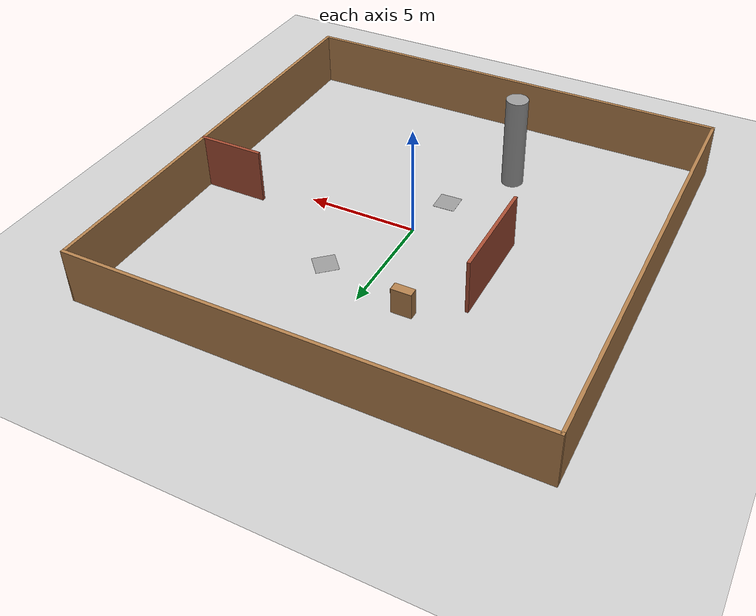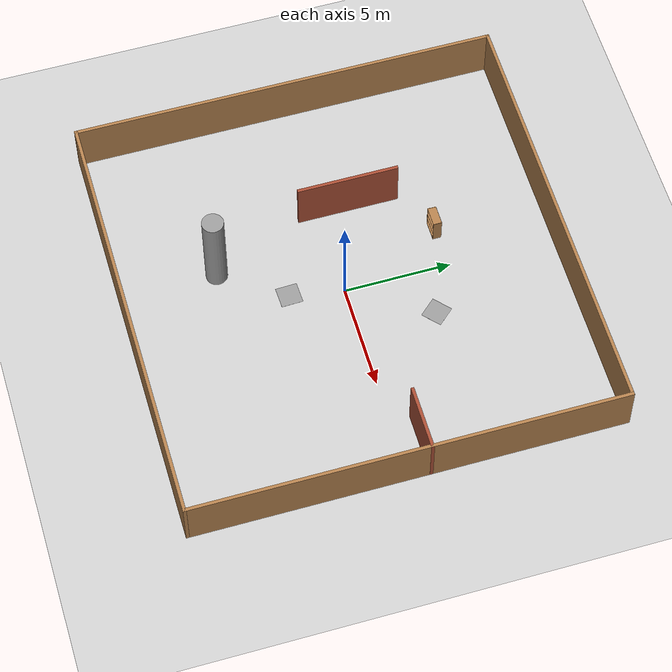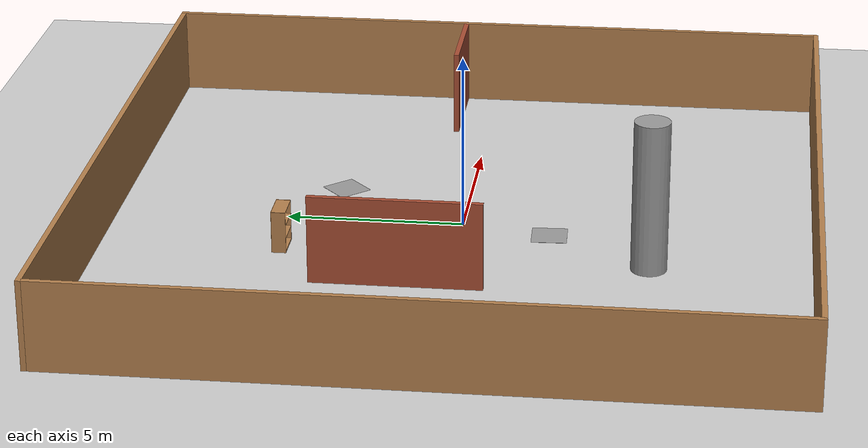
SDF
<sdf version="1.7">
 <world name="default">
  <light name="sun" type="directional">
   <pose>0 0 10 0 -0 0</pose>
   <diffuse>0.8 0.8 0.8 1</diffuse>
   <specular>0.2 0.2 0.2 1</specular>
   <attenuation>
    <range>1000</range>
    <constant>0.9</constant>
    <linear>0.01</linear>
    <quadratic>0.001</quadratic>
   </attenuation>
   <direction>-0.5 0.1 -0.9</direction>
   <spot><inner_angle>0</inner_angle><outer_angle>0</outer_angle><falloff>0</falloff></spot>
  </light>
  <model name="ground_plane">
   <static>1</static>
   <link name="link">
    <collision name="collision">
     <geometry><plane><normal>0 0 1</normal><size>100 100</size></plane></geometry>
     <surface>
      <contact><collide_bitmask>65535</collide_bitmask></contact>
      <friction><ode><mu>100</mu><mu2>50</mu2></ode></friction>
     </surface>
    </collision>
    <visual name="visual">
     <cast_shadows>0</cast_shadows>
     <geometry><plane><normal>0 0 1</normal><size>100 100</size></plane></geometry>
     <material>
      <script><uri>file://media/materials/scripts/gazebo.material</uri><name>Gazebo/Grey</name></script>
     </material>
    </visual>
   </link>
  </model>
  <gravity>0 0 -9.8</gravity>
  <magnetic_field>6e-06 2.3e-05 -4.2e-05</magnetic_field>
  <atmosphere type="adiabatic"/>
  <physics type="ode">
   <max_step_size>0.001</max_step_size>
   <real_time_factor>1</real_time_factor>
   <real_time_update_rate>1000</real_time_update_rate>
  </physics>
  <scene><ambient>0.4 0.4 0.4 1</ambient><background>0.7 0.7 0.7 1</background><shadows>1</shadows></scene>
  <audio><device>default</device></audio>
  <spherical_coordinates>
   <surface_model>EARTH_WGS84</surface_model>
   <latitude_deg>0</latitude_deg>
   <longitude_deg>0</longitude_deg>
   <elevation>0</elevation>
   <heading_deg>0</heading_deg>
  </spherical_coordinates>
  <model name="unit_box">
   <pose>2.21978 3.65422 0.002059 0 -0 0.734078</pose>
   <link name="link">
    <inertial>
     <mass>1</mass>
     <inertia>
      <ixx>0.166667</ixx>
      <ixy>0</ixy>
      <ixz>0</ixz>
      <iyy>0.166667</iyy>
      <iyz>0</iyz>
      <izz>0.166667</izz>
     </inertia>
    </inertial>
    <collision name="collision"><geometry><box><size>1 1 0.00411872</size></box></geometry></collision>
    <visual name="visual">
     <geometry><box><size>1 1 0.00411872</size></box></geometry>
     <material>
      <script><name>Gazebo/Grey</name><uri>file://media/materials/scripts/gazebo.material</uri></script>
     </material>
    </visual>
   </link>
  </model>
  <model name="unit_box_0">
   <pose>-0.485553 -2.48079 0.003389 0 -0 0.036338</pose>
   <link name="link">
    <inertial>
     <mass>1</mass>
     <inertia>
      <ixx>0.166667</ixx>
      <ixy>0</ixy>
      <ixz>0</ixz>
      <iyy>0.166667</iyy>
      <iyz>0</iyz>
      <izz>0.166667</izz>
     </inertia>
    </inertial>
    <collision name="collision"><geometry><box><size>1 1 0.00677866</size></box></geometry></collision>
    <visual name="visual">
     <geometry><box><size>1 1 0.00677866</size></box></geometry>
     <material>
      <script><name>Gazebo/Grey</name><uri>file://media/materials/scripts/gazebo.material</uri></script>
     </material>
    </visual>
   </link>
  </model>
  <model name="aWall">
   <pose>-2.1425 1.37 0 0 -0 0</pose>
   <link name="Wall_6">
    <collision name="Wall_6_Collision">
     <geometry><box><size>4.75 0.15 2.5</size></box></geometry>
     <pose>0 0 1.25 0 -0 0</pose>
    </collision>
    <visual name="Wall_6_Visual">
     <pose>0 0 1.25 0 -0 0</pose>
     <geometry><box><size>4.75 0.15 2.5</size></box></geometry>
     <material>
      <script><uri>file://media/materials/scripts/gazebo.material</uri><name>Gazebo/Bricks</name></script>
      <ambient>1 1 1 1</ambient>
     </material>
     <meta><layer>0</layer></meta>
    </visual>
    <pose>-2.0675 -0 0 0 -0 -1.5708</pose>
   </link>
   <static>1</static>
  </model>
  <model name="playPen">
   <pose>-0.138707 0.05021 0 0 -0 0</pose>
   <link name="Wall_13">
    <collision name="Wall_13_Collision">
     <geometry><box><size>20.25 0.15 2.5</size></box></geometry>
     <pose>0 0 1.25 0 -0 0</pose>
    </collision>
    <visual name="Wall_13_Visual">
     <pose>0 0 1.25 0 -0 0</pose>
     <geometry><box><size>20.25 0.15 2.5</size></box></geometry>
     <material>
      <script><uri>file://media/materials/scripts/gazebo.material</uri><name>Gazebo/Wood</name></script>
      <ambient>1 1 1 1</ambient>
     </material>
     <meta><layer>0</layer></meta>
    </visual>
    <pose>-0.000573 9.925 0 0 -0 0</pose>
   </link>
   <link name="Wall_15">
    <collision name="Wall_15_Collision">
     <geometry><box><size>20 0.15 2.5</size></box></geometry>
     <pose>0 0 1.25 0 -0 0</pose>
    </collision>
    <visual name="Wall_15_Visual">
     <pose>0 0 1.25 0 -0 0</pose>
     <geometry><box><size>20 0.15 2.5</size></box></geometry>
     <material>
      <script><uri>file://media/materials/scripts/gazebo.material</uri><name>Gazebo/Wood</name></script>
      <ambient>1 1 1 1</ambient>
     </material>
     <meta><layer>0</layer></meta>
    </visual>
    <pose>-10.0506 -0 0 0 -0 -1.5708</pose>
   </link>
   <link name="Wall_17">
    <collision name="Wall_17_Collision">
     <geometry><box><size>20 0.15 2.5</size></box></geometry>
     <pose>0 0 1.25 0 -0 0</pose>
    </collision>
    <visual name="Wall_17_Visual">
     <pose>0 0 1.25 0 -0 0</pose>
     <geometry><box><size>20 0.15 2.5</size></box></geometry>
     <material>
      <script><uri>file://media/materials/scripts/gazebo.material</uri><name>Gazebo/Wood</name></script>
      <ambient>1 1 1 1</ambient>
     </material>
     <meta><layer>0</layer></meta>
    </visual>
    <pose>10.0494 -0 0 0 -0 -1.5708</pose>
   </link>
   <link name="Wall_19">
    <collision name="Wall_19_Collision">
     <geometry><box><size>20.25 0.15 2.5</size></box></geometry>
     <pose>0 0 1.25 0 -0 0</pose>
    </collision>
    <visual name="Wall_19_Visual">
     <pose>0 0 1.25 0 -0 0</pose>
     <geometry><box><size>20.25 0.15 2.5</size></box></geometry>
     <material>
      <script><uri>file://media/materials/scripts/gazebo.material</uri><name>Gazebo/Wood</name></script>
      <ambient>1 1 1 1</ambient>
     </material>
     <meta><layer>0</layer></meta>
    </visual>
    <pose>-0.000573 -9.925 0 0 -0 0</pose>
   </link>
   <link name="Wall_23">
    <collision name="Wall_23_Collision">
     <geometry><box><size>3 0.15 2.5</size></box></geometry>
     <pose>0 0 1.25 0 -0 0</pose>
    </collision>
    <visual name="Wall_23_Visual">
     <pose>0 0 1.25 0 -0 0</pose>
     <geometry><box><size>3 0.15 2.5</size></box></geometry>
     <material>
      <script><uri>file://media/materials/scripts/gazebo.material</uri><name>Gazebo/Bricks</name></script>
      <ambient>1 1 1 1</ambient>
     </material>
     <meta><layer>0</layer></meta>
    </visual>
    <pose>8.62557 0.927193 0 0 -0 3.14159</pose>
   </link>
   <static>1</static>
  </model>
  <model name="unit_cylinder">
   <pose>-2.42552 -5.34511 2.16269 0 -0 0.000858</pose>
   <link name="link">
    <inertial>
     <mass>1</mass>
     <inertia><ixx>0.145833</ixx><ixy>0</ixy><ixz>0</ixz><iyy>0.145833</iyy><iyz>0</iyz><izz>0.125</izz></inertia>
    </inertial>
    <collision name="collision">
     <geometry><cylinder><radius>0.5</radius><length>4.3254</length></cylinder></geometry>
    </collision>
    <visual name="visual">
     <geometry><cylinder><radius>0.5</radius><length>4.3254</length></cylinder></geometry>
     <material>
      <script><name>Gazebo/Grey</name><uri>file://media/materials/scripts/gazebo.material</uri></script>
     </material>
    </visual>
   </link>
  </model>
  <model name="bookshelf">
   <static>1</static>
   <link name="link">
    <inertial><mass>1</mass></inertial>
    <collision name="back">
     <pose>0 0.005 0.6 0 -0 0</pose>
     <geometry><box><size>0.9 0.01 1.2</size></box></geometry>
    </collision>
    <visual name="visual1">
     <pose>0 0.005 0.6 0 -0 0</pose>
     <geometry><box><size>0.9 0.01 1.2</size></box></geometry>
     <material>
      <script><uri>file://media/materials/scripts/gazebo.material</uri><name>Gazebo/Wood</name></script>
     </material>
    </visual>
    <collision name="left_side">
     <pose>0.45 -0.195 0.6 0 -0 0</pose>
     <geometry><box><size>0.02 0.4 1.2</size></box></geometry>
    </collision>
    <visual name="visual2">
     <pose>0.45 -0.195 0.6 0 -0 0</pose>
     <geometry><box><size>0.02 0.4 1.2</size></box></geometry>
     <material>
      <script><uri>file://media/materials/scripts/gazebo.material</uri><name>Gazebo/Wood</name></script>
     </material>
    </visual>
    <collision name="right_side">
     <pose>-0.45 -0.195 0.6 0 -0 0</pose>
     <geometry><box><size>0.02 0.4 1.2</size></box></geometry>
    </collision>
    <visual name="visual3">
     <pose>-0.45 -0.195 0.6 0 -0 0</pose>
     <geometry><box><size>0.02 0.4 1.2</size></box></geometry>
     <material>
      <script><uri>file://media/materials/scripts/gazebo.material</uri><name>Gazebo/Wood</name></script>
     </material>
    </visual>
    <collision name="bottom">
     <pose>0 -0.195 0.03 0 -0 0</pose>
     <geometry><box><size>0.88 0.4 0.06</size></box></geometry>
    </collision>
    <visual name="visual4">
     <pose>0 -0.195 0.03 0 -0 0</pose>
     <geometry><box><size>0.88 0.4 0.06</size></box></geometry>
     <material>
      <script><uri>file://media/materials/scripts/gazebo.material</uri><name>Gazebo/Wood</name></script>
     </material>
    </visual>
    <collision name="top">
     <pose>0 -0.195 1.19 0 -0 0</pose>
     <geometry><box><size>0.88 0.4 0.02</size></box></geometry>
    </collision>
    <visual name="visual5">
     <pose>0 -0.195 1.19 0 -0 0</pose>
     <geometry><box><size>0.88 0.4 0.02</size></box></geometry>
     <material>
      <script><uri>file://media/materials/scripts/gazebo.material</uri><name>Gazebo/Wood</name></script>
     </material>
    </visual>
    <collision name="low_shelf">
     <pose>0 -0.195 0.43 0 -0 0</pose>
     <geometry><box><size>0.88 0.4 0.02</size></box></geometry>
    </collision>
    <visual name="visual6">
     <pose>0 -0.195 0.43 0 -0 0</pose>
     <geometry><box><size>0.88 0.4 0.02</size></box></geometry>
     <material>
      <script><uri>file://media/materials/scripts/gazebo.material</uri><name>Gazebo/Wood</name></script>
     </material>
    </visual>
    <collision name="high_shelf">
     <pose>0 -0.195 0.8 0 -0 0</pose>
     <geometry><box><size>0.88 0.4 0.02</size></box></geometry>
    </collision>
    <visual name="visual7">
     <pose>0 -0.195 0.8 0 -0 0</pose>
     <geometry><box><size>0.88 0.4 0.02</size></box></geometry>
     <material>
      <script><uri>file://media/materials/scripts/gazebo.material</uri><name>Gazebo/Wood</name></script>
     </material>
    </visual>
   </link>
   <pose>-2.00644 5.03863 0 0 -0 0</pose>
  </model>
 </world>
</sdf>
